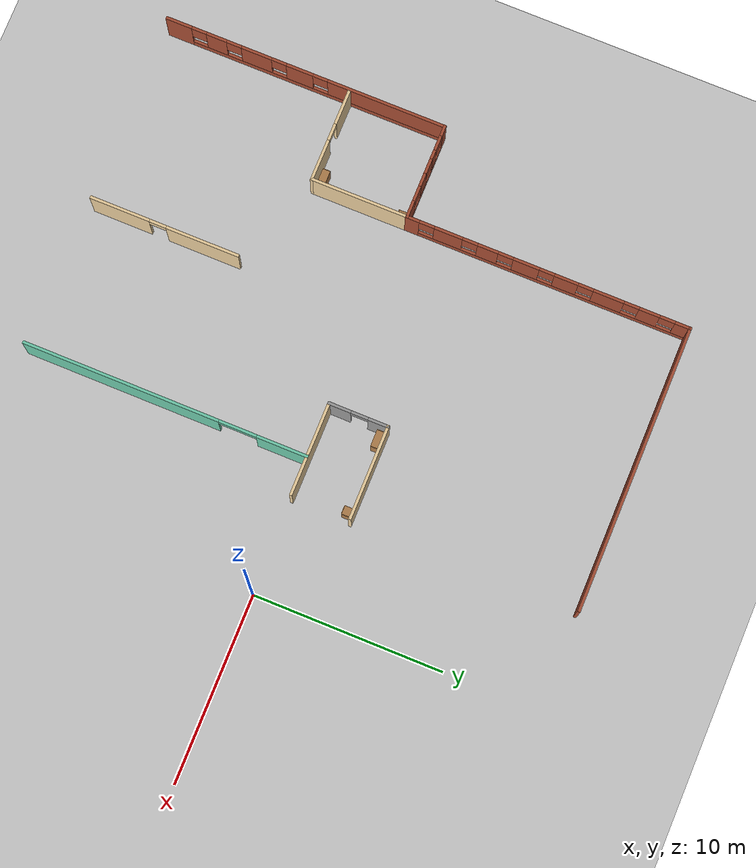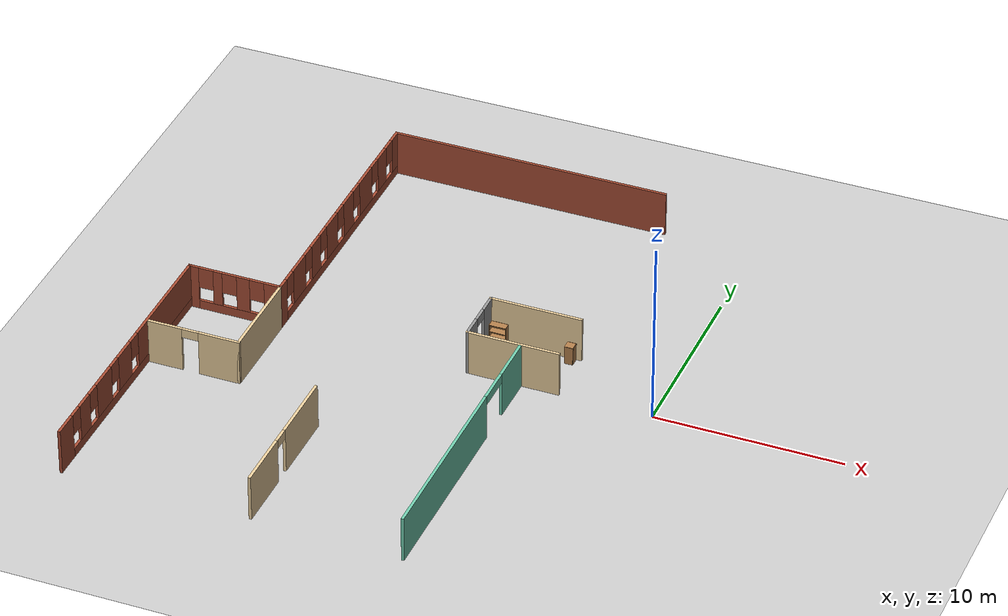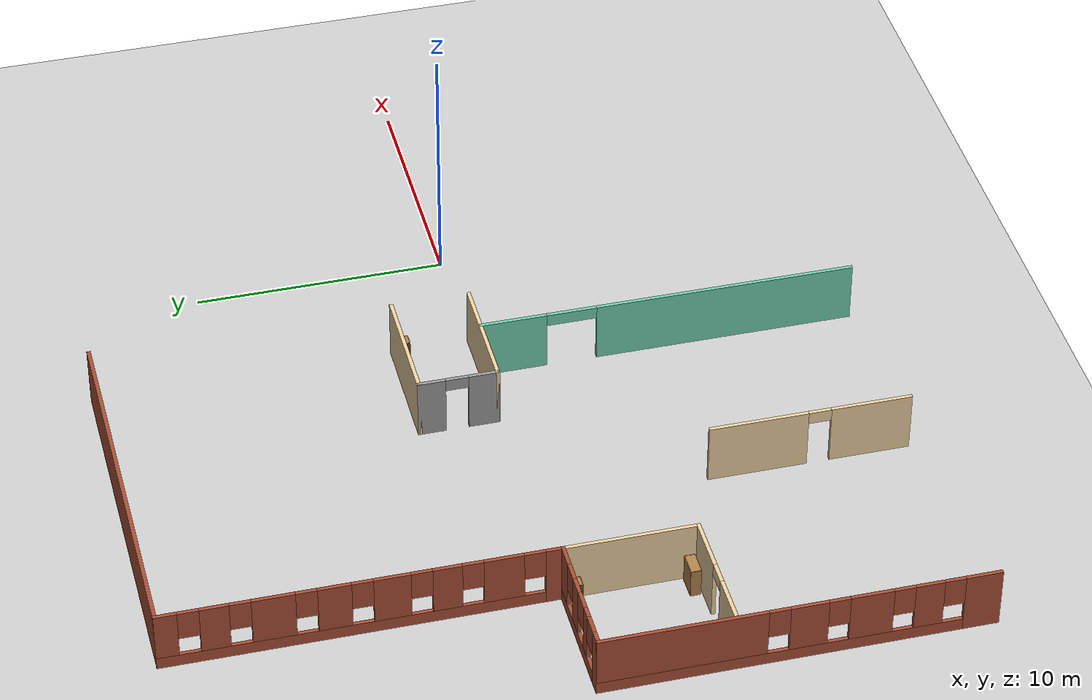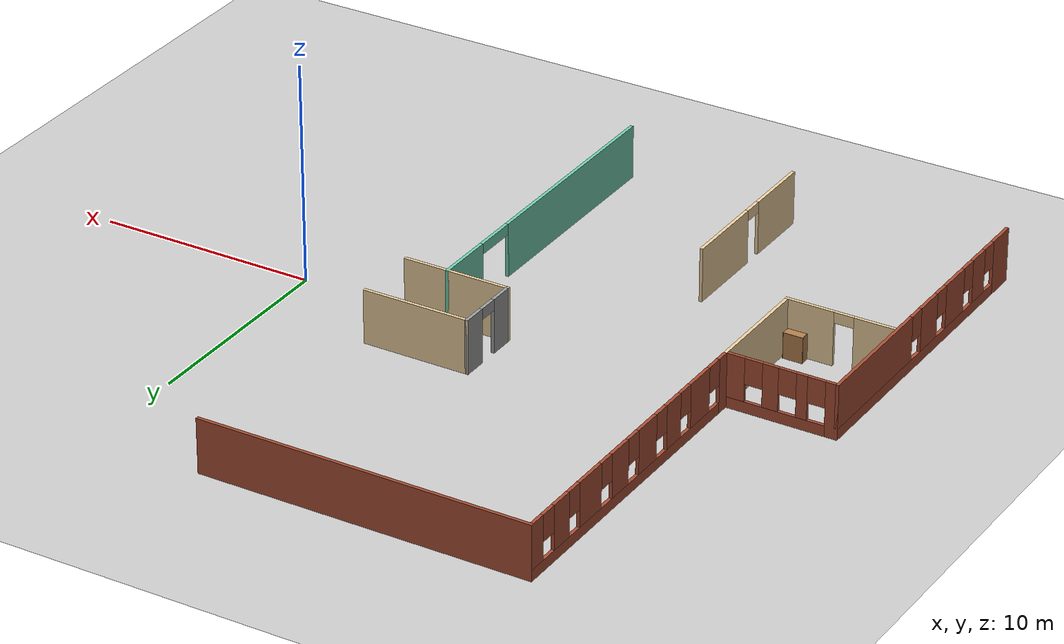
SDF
<sdf version="1.7">
 <world name="default">
  <model name="ground_plane">
   <static>1</static>
   <link name="link">
    <collision name="collision">
     <geometry><plane><normal>0 0 1</normal><size>100 100</size></plane></geometry>
     <surface><friction><ode><mu>100</mu><mu2>50</mu2></ode></friction></surface>
    </collision>
    <visual name="visual">
     <cast_shadows>0</cast_shadows>
     <geometry><plane><normal>0 0 1</normal><size>100 100</size></plane></geometry>
     <material>
      <script><uri>file://media/materials/scripts/gazebo.material</uri><name>Gazebo/Grey</name></script>
     </material>
    </visual>
   </link>
  </model>
  <model name="office">
   <link name="Wall_10">
    <collision name="Wall_10_Collision">
     <geometry><box><size>15.15 0.15 2.5</size></box></geometry>
     <pose>0 0 1.25 0 -0 0</pose>
    </collision>
    <visual name="Wall_10_Visual">
     <pose>0 0 1.25 0 -0 0</pose>
     <geometry><box><size>15.15 0.15 2.5</size></box></geometry>
     <material>
      <script><uri>file://media/materials/scripts/gazebo.material</uri><name>Gazebo/Bricks</name></script>
      <ambient>1 1 1 1</ambient>
     </material>
     <meta><layer>0</layer></meta>
    </visual>
    <pose>-12.5 15 0 0 -0 0</pose>
   </link>
   <link name="Wall_30">
    <collision name="Wall_30_Collision">
     <geometry><box><size>5.25 0.15 2.5</size></box></geometry>
     <pose>0 0 1.25 0 -0 0</pose>
    </collision>
    <visual name="Wall_30_Visual">
     <pose>0 0 1.25 0 -0 0</pose>
     <geometry><box><size>5.25 0.15 2.5</size></box></geometry>
     <material>
      <script><uri>file://media/materials/scripts/gazebo.material</uri><name>Gazebo/Grey</name></script>
      <ambient>0.921569 0.807843 0.615686 1</ambient>
     </material>
     <meta><layer>0</layer></meta>
    </visual>
    <pose>-20 -2.55 0 0 -0 -1.5708</pose>
   </link>
   <link name="Wall_31">
    <pose>-22.425 -5.1 0 0 -0 3.14159</pose>
    <visual name="Wall_31_Visual_0">
     <pose>-1.3798 0 1.25 0 -0 0</pose>
     <geometry><box><size>2.24039 0.15 2.5</size></box></geometry>
     <material>
      <script><uri>file://media/materials/scripts/gazebo.material</uri><name>Gazebo/Grey</name></script>
      <ambient>0.921569 0.807843 0.615686 1</ambient>
     </material>
     <meta><layer>0</layer></meta>
    </visual>
    <collision name="Wall_31_Collision_0">
     <geometry><box><size>2.24039 0.15 2.5</size></box></geometry>
     <pose>-1.3798 0 1.25 0 -0 0</pose>
    </collision>
    <visual name="Wall_31_Visual_1">
     <pose>1.5702 0 1.25 0 -0 0</pose>
     <geometry><box><size>1.85961 0.15 2.5</size></box></geometry>
     <material>
      <script><uri>file://media/materials/scripts/gazebo.material</uri><name>Gazebo/Grey</name></script>
      <ambient>0.921569 0.807843 0.615686 1</ambient>
     </material>
     <meta><layer>0</layer></meta>
    </visual>
    <collision name="Wall_31_Collision_1">
     <geometry><box><size>1.85961 0.15 2.5</size></box></geometry>
     <pose>1.5702 0 1.25 0 -0 0</pose>
    </collision>
    <visual name="Wall_31_Visual_2">
     <pose>0.190393 0 2.25 0 -0 0</pose>
     <geometry><box><size>0.9 0.15 0.5</size></box></geometry>
     <material>
      <script><uri>file://media/materials/scripts/gazebo.material</uri><name>Gazebo/Grey</name></script>
      <ambient>0.921569 0.807843 0.615686 1</ambient>
     </material>
     <meta><layer>0</layer></meta>
    </visual>
    <collision name="Wall_31_Collision_2">
     <geometry><box><size>0.9 0.15 0.5</size></box></geometry>
     <pose>0.190393 0 2.25 0 -0 0</pose>
    </collision>
   </link>
   <link name="Wall_33">
    <pose>-15 -10.925 0 0 -0 -1.5708</pose>
    <visual name="Wall_33_Visual_0">
     <pose>-2.0477 0 1.25 0 -0 0</pose>
     <geometry><box><size>3.90459 0.15 2.5</size></box></geometry>
     <material>
      <script><uri>file://media/materials/scripts/gazebo.material</uri><name>Gazebo/Grey</name></script>
      <ambient>0.921569 0.807843 0.615686 1</ambient>
     </material>
     <meta><layer>0</layer></meta>
    </visual>
    <collision name="Wall_33_Collision_0">
     <geometry><box><size>3.90459 0.15 2.5</size></box></geometry>
     <pose>-2.0477 0 1.25 0 -0 0</pose>
    </collision>
    <visual name="Wall_33_Visual_1">
     <pose>2.4023 0 1.25 0 -0 0</pose>
     <geometry><box><size>3.19541 0.15 2.5</size></box></geometry>
     <material>
      <script><uri>file://media/materials/scripts/gazebo.material</uri><name>Gazebo/Grey</name></script>
      <ambient>0.921569 0.807843 0.615686 1</ambient>
     </material>
     <meta><layer>0</layer></meta>
    </visual>
    <collision name="Wall_33_Collision_1">
     <geometry><box><size>3.19541 0.15 2.5</size></box></geometry>
     <pose>2.4023 0 1.25 0 -0 0</pose>
    </collision>
    <visual name="Wall_33_Visual_2">
     <pose>0.354591 0 2.25 0 -0 0</pose>
     <geometry><box><size>0.9 0.15 0.5</size></box></geometry>
     <material>
      <script><uri>file://media/materials/scripts/gazebo.material</uri><name>Gazebo/Grey</name></script>
      <ambient>0.921569 0.807843 0.615686 1</ambient>
     </material>
     <meta><layer>0</layer></meta>
    </visual>
    <collision name="Wall_33_Collision_2">
     <geometry><box><size>0.9 0.15 0.5</size></box></geometry>
     <pose>0.354591 0 2.25 0 -0 0</pose>
    </collision>
   </link>
   <link name="Wall_35">
    <collision name="Wall_35_Collision">
     <geometry><box><size>5 0.15 2.5</size></box></geometry>
     <pose>0 0 1.25 0 -0 0</pose>
    </collision>
    <visual name="Wall_35_Visual">
     <pose>0 0 1.25 0 -0 0</pose>
     <geometry><box><size>5 0.15 2.5</size></box></geometry>
     <material>
      <script><uri>file://media/materials/scripts/gazebo.material</uri><name>Gazebo/Grey</name></script>
      <ambient>0.921569 0.807843 0.615686 1</ambient>
     </material>
     <meta><layer>0</layer></meta>
    </visual>
    <pose>-7.425 0 0 0 -0 3.14159</pose>
   </link>
   <link name="Wall_36">
    <pose>-9.85 1.55 0 0 -0 1.5708</pose>
    <visual name="Wall_36_Visual_0">
     <pose>-1.00951 0 1.25 0 -0 0</pose>
     <geometry><box><size>1.23099 0.15 2.5</size></box></geometry>
     <material>
      <script><uri>file://media/materials/scripts/gazebo.material</uri><name>Gazebo/Grey</name></script>
      <ambient>1 1 1 1</ambient>
     </material>
     <meta><layer>0</layer></meta>
    </visual>
    <collision name="Wall_36_Collision_0">
     <geometry><box><size>1.23099 0.15 2.5</size></box></geometry>
     <pose>-1.00951 0 1.25 0 -0 0</pose>
    </collision>
    <visual name="Wall_36_Visual_1">
     <pose>1.06549 0 1.25 0 -0 0</pose>
     <geometry><box><size>1.11901 0.15 2.5</size></box></geometry>
     <material>
      <script><uri>file://media/materials/scripts/gazebo.material</uri><name>Gazebo/Grey</name></script>
      <ambient>1 1 1 1</ambient>
     </material>
     <meta><layer>0</layer></meta>
    </visual>
    <collision name="Wall_36_Collision_1">
     <geometry><box><size>1.11901 0.15 2.5</size></box></geometry>
     <pose>1.06549 0 1.25 0 -0 0</pose>
    </collision>
    <visual name="Wall_36_Visual_2">
     <pose>0.055988 0 2.25 0 -0 0</pose>
     <geometry><box><size>0.9 0.15 0.5</size></box></geometry>
     <material>
      <script><uri>file://media/materials/scripts/gazebo.material</uri><name>Gazebo/Grey</name></script>
      <ambient>1 1 1 1</ambient>
     </material>
     <meta><layer>0</layer></meta>
    </visual>
    <collision name="Wall_36_Collision_2">
     <geometry><box><size>0.9 0.15 0.5</size></box></geometry>
     <pose>0.055988 0 2.25 0 -0 0</pose>
    </collision>
   </link>
   <link name="Wall_37">
    <collision name="Wall_37_Collision">
     <geometry><box><size>5 0.15 2.5</size></box></geometry>
     <pose>0 0 1.25 0 -0 0</pose>
    </collision>
    <visual name="Wall_37_Visual">
     <pose>0 0 1.25 0 -0 0</pose>
     <geometry><box><size>5 0.15 2.5</size></box></geometry>
     <material>
      <script><uri>file://media/materials/scripts/gazebo.material</uri><name>Gazebo/Grey</name></script>
      <ambient>0.921569 0.807843 0.615686 1</ambient>
     </material>
     <meta><layer>0</layer></meta>
    </visual>
    <pose>-7.425 3.1 0 0 -0 0</pose>
   </link>
   <link name="Wall_39">
    <pose>-7 -7.5 0 0 -0 -1.5708</pose>
    <visual name="Wall_39_Visual_0">
     <pose>-6.21415 0 1.25 0 -0 0</pose>
     <geometry><box><size>2.72169 0.15 2.5</size></box></geometry>
     <material>
      <script><uri>file://media/materials/scripts/gazebo.material</uri><name>Gazebo/Grey</name></script>
      <ambient>0.435294 0.796078 0.67451 1</ambient>
     </material>
     <meta><layer>0</layer></meta>
    </visual>
    <collision name="Wall_39_Collision_0">
     <geometry><box><size>2.72169 0.15 2.5</size></box></geometry>
     <pose>-6.21415 0 1.25 0 -0 0</pose>
    </collision>
    <visual name="Wall_39_Visual_1">
     <pose>2.36085 0 1.25 0 -0 0</pose>
     <geometry><box><size>10.4283 0.15 2.5</size></box></geometry>
     <material>
      <script><uri>file://media/materials/scripts/gazebo.material</uri><name>Gazebo/Grey</name></script>
      <ambient>0.435294 0.796078 0.67451 1</ambient>
     </material>
     <meta><layer>0</layer></meta>
    </visual>
    <collision name="Wall_39_Collision_1">
     <geometry><box><size>10.4283 0.15 2.5</size></box></geometry>
     <pose>2.36085 0 1.25 0 -0 0</pose>
    </collision>
    <visual name="Wall_39_Visual_2">
     <pose>-3.85331 0 2.25 0 -0 0</pose>
     <geometry><box><size>2 0.15 0.5</size></box></geometry>
     <material>
      <script><uri>file://media/materials/scripts/gazebo.material</uri><name>Gazebo/Grey</name></script>
      <ambient>0.435294 0.796078 0.67451 1</ambient>
     </material>
     <meta><layer>0</layer></meta>
    </visual>
    <collision name="Wall_39_Collision_2">
     <geometry><box><size>2 0.15 0.5</size></box></geometry>
     <pose>-3.85331 0 2.25 0 -0 0</pose>
    </collision>
   </link>
   <link name="Wall_4">
    <pose>-25 -7.5 0 0 -0 1.5708</pose>
    <visual name="Wall_4_Visual_0">
     <pose>-6.87392 0 1.25 0 -0 0</pose>
     <geometry><box><size>1.40215 0.15 2.5</size></box></geometry>
     <material>
      <script><uri>file://media/materials/scripts/gazebo.material</uri><name>Gazebo/Bricks</name></script>
      <ambient>1 1 1 1</ambient>
     </material>
     <meta><layer>0</layer></meta>
    </visual>
    <collision name="Wall_4_Collision_0">
     <geometry><box><size>1.40215 0.15 2.5</size></box></geometry>
     <pose>-6.87392 0 1.25 0 -0 0</pose>
    </collision>
    <visual name="Wall_4_Visual_1">
     <pose>0.701077 0 0.25 0 -0 0</pose>
     <geometry><box><size>13.7478 0.15 0.5</size></box></geometry>
     <material>
      <script><uri>file://media/materials/scripts/gazebo.material</uri><name>Gazebo/Bricks</name></script>
      <ambient>1 1 1 1</ambient>
     </material>
     <meta><layer>0</layer></meta>
    </visual>
    <collision name="Wall_4_Collision_1">
     <geometry><box><size>13.7478 0.15 0.5</size></box></geometry>
     <pose>0.701077 0 0.25 0 -0 0</pose>
    </collision>
    <visual name="Wall_4_Visual_2">
     <pose>-4.82312 0 1.5 0 -0 0</pose>
     <geometry><box><size>1.09946 0.15 2</size></box></geometry>
     <material>
      <script><uri>file://media/materials/scripts/gazebo.material</uri><name>Gazebo/Bricks</name></script>
      <ambient>1 1 1 1</ambient>
     </material>
     <meta><layer>0</layer></meta>
    </visual>
    <collision name="Wall_4_Collision_2">
     <geometry><box><size>1.09946 0.15 2</size></box></geometry>
     <pose>-4.82312 0 1.5 0 -0 0</pose>
    </collision>
    <visual name="Wall_4_Visual_3">
     <pose>-2.65231 0 1.5 0 -0 0</pose>
     <geometry><box><size>1.64216 0.15 2</size></box></geometry>
     <material>
      <script><uri>file://media/materials/scripts/gazebo.material</uri><name>Gazebo/Bricks</name></script>
      <ambient>1 1 1 1</ambient>
     </material>
     <meta><layer>0</layer></meta>
    </visual>
    <collision name="Wall_4_Collision_3">
     <geometry><box><size>1.64216 0.15 2</size></box></geometry>
     <pose>-2.65231 0 1.5 0 -0 0</pose>
    </collision>
    <visual name="Wall_4_Visual_4">
     <pose>-0.311907 0 1.5 0 -0 0</pose>
     <geometry><box><size>1.43865 0.15 2</size></box></geometry>
     <material>
      <script><uri>file://media/materials/scripts/gazebo.material</uri><name>Gazebo/Bricks</name></script>
      <ambient>1 1 1 1</ambient>
     </material>
     <meta><layer>0</layer></meta>
    </visual>
    <collision name="Wall_4_Collision_4">
     <geometry><box><size>1.43865 0.15 2</size></box></geometry>
     <pose>-0.311907 0 1.5 0 -0 0</pose>
    </collision>
    <visual name="Wall_4_Visual_5">
     <pose>4.39121 0 1.5 0 -0 0</pose>
     <geometry><box><size>6.36758 0.15 2</size></box></geometry>
     <material>
      <script><uri>file://media/materials/scripts/gazebo.material</uri><name>Gazebo/Bricks</name></script>
      <ambient>1 1 1 1</ambient>
     </material>
     <meta><layer>0</layer></meta>
    </visual>
    <collision name="Wall_4_Collision_5">
     <geometry><box><size>6.36758 0.15 2</size></box></geometry>
     <pose>4.39121 0 1.5 0 -0 0</pose>
    </collision>
    <visual name="Wall_4_Visual_6">
     <pose>-5.77285 0 1.9 0 -0 0</pose>
     <geometry><box><size>0.8 0.15 1.2</size></box></geometry>
     <material>
      <script><uri>file://media/materials/scripts/gazebo.material</uri><name>Gazebo/Bricks</name></script>
      <ambient>1 1 1 1</ambient>
     </material>
     <meta><layer>0</layer></meta>
    </visual>
    <collision name="Wall_4_Collision_6">
     <geometry><box><size>0.8 0.15 1.2</size></box></geometry>
     <pose>-5.77285 0 1.9 0 -0 0</pose>
    </collision>
    <visual name="Wall_4_Visual_7">
     <pose>-3.87339 0 1.9 0 -0 0</pose>
     <geometry><box><size>0.8 0.15 1.2</size></box></geometry>
     <material>
      <script><uri>file://media/materials/scripts/gazebo.material</uri><name>Gazebo/Bricks</name></script>
      <ambient>1 1 1 1</ambient>
     </material>
     <meta><layer>0</layer></meta>
    </visual>
    <collision name="Wall_4_Collision_7">
     <geometry><box><size>0.8 0.15 1.2</size></box></geometry>
     <pose>-3.87339 0 1.9 0 -0 0</pose>
    </collision>
    <visual name="Wall_4_Visual_8">
     <pose>-1.43123 0 1.9 0 -0 0</pose>
     <geometry><box><size>0.8 0.15 1.2</size></box></geometry>
     <material>
      <script><uri>file://media/materials/scripts/gazebo.material</uri><name>Gazebo/Bricks</name></script>
      <ambient>1 1 1 1</ambient>
     </material>
     <meta><layer>0</layer></meta>
    </visual>
    <collision name="Wall_4_Collision_8">
     <geometry><box><size>0.8 0.15 1.2</size></box></geometry>
     <pose>-1.43123 0 1.9 0 -0 0</pose>
    </collision>
    <visual name="Wall_4_Visual_9">
     <pose>0.807416 0 1.9 0 -0 0</pose>
     <geometry><box><size>0.8 0.15 1.2</size></box></geometry>
     <material>
      <script><uri>file://media/materials/scripts/gazebo.material</uri><name>Gazebo/Bricks</name></script>
      <ambient>1 1 1 1</ambient>
     </material>
     <meta><layer>0</layer></meta>
    </visual>
    <collision name="Wall_4_Collision_9">
     <geometry><box><size>0.8 0.15 1.2</size></box></geometry>
     <pose>0.807416 0 1.9 0 -0 0</pose>
    </collision>
   </link>
   <link name="Wall_6">
    <pose>-22.5 0 0 0 -0 0</pose>
    <visual name="Wall_6_Visual_0">
     <pose>-2.28117 0 1.25 0 -0 0</pose>
     <geometry><box><size>0.587663 0.15 2.5</size></box></geometry>
     <material>
      <script><uri>file://media/materials/scripts/gazebo.material</uri><name>Gazebo/Bricks</name></script>
      <ambient>1 1 1 1</ambient>
     </material>
     <meta><layer>0</layer></meta>
    </visual>
    <collision name="Wall_6_Collision_0">
     <geometry><box><size>0.587663 0.15 2.5</size></box></geometry>
     <pose>-2.28117 0 1.25 0 -0 0</pose>
    </collision>
    <visual name="Wall_6_Visual_1">
     <pose>0.293831 0 0.25 0 -0 0</pose>
     <geometry><box><size>4.56234 0.15 0.5</size></box></geometry>
     <material>
      <script><uri>file://media/materials/scripts/gazebo.material</uri><name>Gazebo/Bricks</name></script>
      <ambient>1 1 1 1</ambient>
     </material>
     <meta><layer>0</layer></meta>
    </visual>
    <collision name="Wall_6_Collision_1">
     <geometry><box><size>4.56234 0.15 0.5</size></box></geometry>
     <pose>0.293831 0 0.25 0 -0 0</pose>
    </collision>
    <visual name="Wall_6_Visual_2">
     <pose>-0.940574 0 1.5 0 -0 0</pose>
     <geometry><box><size>0.493528 0.15 2</size></box></geometry>
     <material>
      <script><uri>file://media/materials/scripts/gazebo.material</uri><name>Gazebo/Bricks</name></script>
      <ambient>1 1 1 1</ambient>
     </material>
     <meta><layer>0</layer></meta>
    </visual>
    <collision name="Wall_6_Collision_2">
     <geometry><box><size>0.493528 0.15 2</size></box></geometry>
     <pose>-0.940574 0 1.5 0 -0 0</pose>
    </collision>
    <visual name="Wall_6_Visual_3">
     <pose>0.464465 0 1.5 0 -0 0</pose>
     <geometry><box><size>0.71655 0.15 2</size></box></geometry>
     <material>
      <script><uri>file://media/materials/scripts/gazebo.material</uri><name>Gazebo/Bricks</name></script>
      <ambient>1 1 1 1</ambient>
     </material>
     <meta><layer>0</layer></meta>
    </visual>
    <collision name="Wall_6_Collision_3">
     <geometry><box><size>0.71655 0.15 2</size></box></geometry>
     <pose>0.464465 0 1.5 0 -0 0</pose>
    </collision>
    <visual name="Wall_6_Visual_4">
     <pose>2.09887 0 1.5 0 -0 0</pose>
     <geometry><box><size>0.95226 0.15 2</size></box></geometry>
     <material>
      <script><uri>file://media/materials/scripts/gazebo.material</uri><name>Gazebo/Bricks</name></script>
      <ambient>1 1 1 1</ambient>
     </material>
     <meta><layer>0</layer></meta>
    </visual>
    <collision name="Wall_6_Collision_4">
     <geometry><box><size>0.95226 0.15 2</size></box></geometry>
     <pose>2.09887 0 1.5 0 -0 0</pose>
    </collision>
    <visual name="Wall_6_Visual_5">
     <pose>-1.58734 0 1.9 0 -0 0</pose>
     <geometry><box><size>0.8 0.15 1.2</size></box></geometry>
     <material>
      <script><uri>file://media/materials/scripts/gazebo.material</uri><name>Gazebo/Bricks</name></script>
      <ambient>1 1 1 1</ambient>
     </material>
     <meta><layer>0</layer></meta>
    </visual>
    <collision name="Wall_6_Collision_5">
     <geometry><box><size>0.8 0.15 1.2</size></box></geometry>
     <pose>-1.58734 0 1.9 0 -0 0</pose>
    </collision>
    <visual name="Wall_6_Visual_6">
     <pose>-0.29381 0 1.9 0 -0 0</pose>
     <geometry><box><size>0.8 0.15 1.2</size></box></geometry>
     <material>
      <script><uri>file://media/materials/scripts/gazebo.material</uri><name>Gazebo/Bricks</name></script>
      <ambient>1 1 1 1</ambient>
     </material>
     <meta><layer>0</layer></meta>
    </visual>
    <collision name="Wall_6_Collision_6">
     <geometry><box><size>0.8 0.15 1.2</size></box></geometry>
     <pose>-0.29381 0 1.9 0 -0 0</pose>
    </collision>
    <visual name="Wall_6_Visual_7">
     <pose>1.22274 0 1.9 0 -0 0</pose>
     <geometry><box><size>0.8 0.15 1.2</size></box></geometry>
     <material>
      <script><uri>file://media/materials/scripts/gazebo.material</uri><name>Gazebo/Bricks</name></script>
      <ambient>1 1 1 1</ambient>
     </material>
     <meta><layer>0</layer></meta>
    </visual>
    <collision name="Wall_6_Collision_7">
     <geometry><box><size>0.8 0.15 1.2</size></box></geometry>
     <pose>1.22274 0 1.9 0 -0 0</pose>
    </collision>
   </link>
   <link name="Wall_8">
    <pose>-20 7.5 0 0 -0 1.5708</pose>
    <visual name="Wall_8_Visual_0">
     <pose>-7.20776 0 1.25 0 -0 0</pose>
     <geometry><box><size>0.734484 0.15 2.5</size></box></geometry>
     <material>
      <script><uri>file://media/materials/scripts/gazebo.material</uri><name>Gazebo/Bricks</name></script>
      <ambient>1 1 1 1</ambient>
     </material>
     <meta><layer>0</layer></meta>
    </visual>
    <collision name="Wall_8_Collision_0">
     <geometry><box><size>0.734484 0.15 2.5</size></box></geometry>
     <pose>-7.20776 0 1.25 0 -0 0</pose>
    </collision>
    <visual name="Wall_8_Visual_1">
     <pose>0.367242 0 0.25 0 -0 0</pose>
     <geometry><box><size>14.4155 0.15 0.5</size></box></geometry>
     <material>
      <script><uri>file://media/materials/scripts/gazebo.material</uri><name>Gazebo/Bricks</name></script>
      <ambient>1 1 1 1</ambient>
     </material>
     <meta><layer>0</layer></meta>
    </visual>
    <collision name="Wall_8_Collision_1">
     <geometry><box><size>14.4155 0.15 0.5</size></box></geometry>
     <pose>0.367242 0 0.25 0 -0 0</pose>
    </collision>
    <visual name="Wall_8_Visual_2">
     <pose>-5.28727 0 1.5 0 -0 0</pose>
     <geometry><box><size>1.50648 0.15 2</size></box></geometry>
     <material>
      <script><uri>file://media/materials/scripts/gazebo.material</uri><name>Gazebo/Bricks</name></script>
      <ambient>1 1 1 1</ambient>
     </material>
     <meta><layer>0</layer></meta>
    </visual>
    <collision name="Wall_8_Collision_2">
     <geometry><box><size>1.50648 0.15 2</size></box></geometry>
     <pose>-5.28727 0 1.5 0 -0 0</pose>
    </collision>
    <visual name="Wall_8_Visual_3">
     <pose>-3.1843 0 1.5 0 -0 0</pose>
     <geometry><box><size>1.09946 0.15 2</size></box></geometry>
     <material>
      <script><uri>file://media/materials/scripts/gazebo.material</uri><name>Gazebo/Bricks</name></script>
      <ambient>1 1 1 1</ambient>
     </material>
     <meta><layer>0</layer></meta>
    </visual>
    <collision name="Wall_8_Collision_3">
     <geometry><box><size>1.09946 0.15 2</size></box></geometry>
     <pose>-3.1843 0 1.5 0 -0 0</pose>
    </collision>
    <visual name="Wall_8_Visual_4">
     <pose>-1.14301 0 1.5 0 -0 0</pose>
     <geometry><box><size>1.38314 0.15 2</size></box></geometry>
     <material>
      <script><uri>file://media/materials/scripts/gazebo.material</uri><name>Gazebo/Bricks</name></script>
      <ambient>1 1 1 1</ambient>
     </material>
     <meta><layer>0</layer></meta>
    </visual>
    <collision name="Wall_8_Collision_4">
     <geometry><box><size>1.38314 0.15 2</size></box></geometry>
     <pose>-1.14301 0 1.5 0 -0 0</pose>
    </collision>
    <visual name="Wall_8_Visual_5">
     <pose>0.97622 0 1.5 0 -0 0</pose>
     <geometry><box><size>1.25531 0.15 2</size></box></geometry>
     <material>
      <script><uri>file://media/materials/scripts/gazebo.material</uri><name>Gazebo/Bricks</name></script>
      <ambient>1 1 1 1</ambient>
     </material>
     <meta><layer>0</layer></meta>
    </visual>
    <collision name="Wall_8_Collision_5">
     <geometry><box><size>1.25531 0.15 2</size></box></geometry>
     <pose>0.97622 0 1.5 0 -0 0</pose>
    </collision>
    <visual name="Wall_8_Visual_6">
     <pose>3.21316 0 1.5 0 -0 0</pose>
     <geometry><box><size>1.61856 0.15 2</size></box></geometry>
     <material>
      <script><uri>file://media/materials/scripts/gazebo.material</uri><name>Gazebo/Bricks</name></script>
      <ambient>1 1 1 1</ambient>
     </material>
     <meta><layer>0</layer></meta>
    </visual>
    <collision name="Wall_8_Collision_6">
     <geometry><box><size>1.61856 0.15 2</size></box></geometry>
     <pose>3.21316 0 1.5 0 -0 0</pose>
    </collision>
    <visual name="Wall_8_Visual_7">
     <pose>5.36627 0 1.5 0 -0 0</pose>
     <geometry><box><size>1.08766 0.15 2</size></box></geometry>
     <material>
      <script><uri>file://media/materials/scripts/gazebo.material</uri><name>Gazebo/Bricks</name></script>
      <ambient>1 1 1 1</ambient>
     </material>
     <meta><layer>0</layer></meta>
    </visual>
    <collision name="Wall_8_Collision_7">
     <geometry><box><size>1.08766 0.15 2</size></box></geometry>
     <pose>5.36627 0 1.5 0 -0 0</pose>
    </collision>
    <visual name="Wall_8_Visual_8">
     <pose>7.14255 0 1.5 0 -0 0</pose>
     <geometry><box><size>0.8649 0.15 2</size></box></geometry>
     <material>
      <script><uri>file://media/materials/scripts/gazebo.material</uri><name>Gazebo/Bricks</name></script>
      <ambient>1 1 1 1</ambient>
     </material>
     <meta><layer>0</layer></meta>
    </visual>
    <collision name="Wall_8_Collision_8">
     <geometry><box><size>0.8649 0.15 2</size></box></geometry>
     <pose>7.14255 0 1.5 0 -0 0</pose>
    </collision>
    <visual name="Wall_8_Visual_9">
     <pose>-6.44052 0 1.9 0 -0 0</pose>
     <geometry><box><size>0.8 0.15 1.2</size></box></geometry>
     <material>
      <script><uri>file://media/materials/scripts/gazebo.material</uri><name>Gazebo/Bricks</name></script>
      <ambient>1 1 1 1</ambient>
     </material>
     <meta><layer>0</layer></meta>
    </visual>
    <collision name="Wall_8_Collision_9">
     <geometry><box><size>0.8 0.15 1.2</size></box></geometry>
     <pose>-6.44052 0 1.9 0 -0 0</pose>
    </collision>
    <visual name="Wall_8_Visual_10">
     <pose>-4.13403 0 1.9 0 -0 0</pose>
     <geometry><box><size>0.8 0.15 1.2</size></box></geometry>
     <material>
      <script><uri>file://media/materials/scripts/gazebo.material</uri><name>Gazebo/Bricks</name></script>
      <ambient>1 1 1 1</ambient>
     </material>
     <meta><layer>0</layer></meta>
    </visual>
    <collision name="Wall_8_Collision_10">
     <geometry><box><size>0.8 0.15 1.2</size></box></geometry>
     <pose>-4.13403 0 1.9 0 -0 0</pose>
    </collision>
    <visual name="Wall_8_Visual_11">
     <pose>-2.23457 0 1.9 0 -0 0</pose>
     <geometry><box><size>0.8 0.15 1.2</size></box></geometry>
     <material>
      <script><uri>file://media/materials/scripts/gazebo.material</uri><name>Gazebo/Bricks</name></script>
      <ambient>1 1 1 1</ambient>
     </material>
     <meta><layer>0</layer></meta>
    </visual>
    <collision name="Wall_8_Collision_11">
     <geometry><box><size>0.8 0.15 1.2</size></box></geometry>
     <pose>-2.23457 0 1.9 0 -0 0</pose>
    </collision>
    <visual name="Wall_8_Visual_12">
     <pose>-0.051436 0 1.9 0 -0 0</pose>
     <geometry><box><size>0.8 0.15 1.2</size></box></geometry>
     <material>
      <script><uri>file://media/materials/scripts/gazebo.material</uri><name>Gazebo/Bricks</name></script>
      <ambient>1 1 1 1</ambient>
     </material>
     <meta><layer>0</layer></meta>
    </visual>
    <collision name="Wall_8_Collision_12">
     <geometry><box><size>0.8 0.15 1.2</size></box></geometry>
     <pose>-0.051436 0 1.9 0 -0 0</pose>
    </collision>
    <visual name="Wall_8_Visual_13">
     <pose>2.00388 0 1.9 0 -0 0</pose>
     <geometry><box><size>0.8 0.15 1.2</size></box></geometry>
     <material>
      <script><uri>file://media/materials/scripts/gazebo.material</uri><name>Gazebo/Bricks</name></script>
      <ambient>1 1 1 1</ambient>
     </material>
     <meta><layer>0</layer></meta>
    </visual>
    <collision name="Wall_8_Collision_13">
     <geometry><box><size>0.8 0.15 1.2</size></box></geometry>
     <pose>2.00388 0 1.9 0 -0 0</pose>
    </collision>
    <visual name="Wall_8_Visual_14">
     <pose>4.42244 0 1.9 0 -0 0</pose>
     <geometry><box><size>0.8 0.15 1.2</size></box></geometry>
     <material>
      <script><uri>file://media/materials/scripts/gazebo.material</uri><name>Gazebo/Bricks</name></script>
      <ambient>1 1 1 1</ambient>
     </material>
     <meta><layer>0</layer></meta>
    </visual>
    <collision name="Wall_8_Collision_14">
     <geometry><box><size>0.8 0.15 1.2</size></box></geometry>
     <pose>4.42244 0 1.9 0 -0 0</pose>
    </collision>
    <visual name="Wall_8_Visual_15">
     <pose>6.3101 0 1.9 0 -0 0</pose>
     <geometry><box><size>0.8 0.15 1.2</size></box></geometry>
     <material>
      <script><uri>file://media/materials/scripts/gazebo.material</uri><name>Gazebo/Bricks</name></script>
      <ambient>1 1 1 1</ambient>
     </material>
     <meta><layer>0</layer></meta>
    </visual>
    <collision name="Wall_8_Collision_15">
     <geometry><box><size>0.8 0.15 1.2</size></box></geometry>
     <pose>6.3101 0 1.9 0 -0 0</pose>
    </collision>
   </link>
   <static>1</static>
  </model>
  <model name="cabinet">
   <static>1</static>
   <link name="cabinet_bottom_plate">
    <inertial>
     <pose>0 0 -1 0 -0 0</pose>
     <inertia><ixx>2.05</ixx><ixy>0</ixy><ixz>0</ixz><iyy>2.05</iyy><iyz>0</iyz><izz>2.05</izz></inertia>
     <mass>25</mass>
    </inertial>
    <collision name="cabinet_bottom_plate_geom">
     <pose>0 0 0.01 0 -0 0</pose>
     <geometry><box><size>0.45 0.45 0.02</size></box></geometry>
    </collision>
    <visual name="cabinet_bottom_plate_geom_visual">
     <pose>0 0 0.01 0 -0 0</pose>
     <geometry><box><size>0.45 0.45 0.02</size></box></geometry>
     <material>
      <script><uri>file://media/materials/scripts/gazebo.material</uri><name>Gazebo/Wood</name></script>
     </material>
    </visual>
    <collision name="cabinet_bottom_plate_geom_cabinet_back_plate">
     <pose>0.235 0 0.51 0 -0 0</pose>
     <geometry><box><size>0.02 0.45 1.02</size></box></geometry>
    </collision>
    <visual name="cabinet_bottom_plate_geom_cabinet_back_plate_visual">
     <pose>0.235 0 0.51 0 -0 0</pose>
     <geometry><box><size>0.02 0.45 1.02</size></box></geometry>
     <material>
      <script><uri>file://media/materials/scripts/gazebo.material</uri><name>Gazebo/Wood</name></script>
     </material>
    </visual>
    <collision name="cabinet_bottom_plate_geom_cabinet_left_plate">
     <pose>0 0.235 0.51 0 -0 0</pose>
     <geometry><box><size>0.45 0.02 1.02</size></box></geometry>
    </collision>
    <visual name="cabinet_bottom_plate_geom_cabinet_left_plate_visual">
     <pose>0 0.235 0.51 0 -0 0</pose>
     <geometry><box><size>0.45 0.02 1.02</size></box></geometry>
     <material>
      <script><uri>file://media/materials/scripts/gazebo.material</uri><name>Gazebo/Wood</name></script>
     </material>
    </visual>
    <collision name="cabinet_bottom_plate_geom_cabinet_middle_plate">
     <pose>0 0 0.51 0 -0 0</pose>
     <geometry><box><size>0.45 0.45 0.02</size></box></geometry>
    </collision>
    <visual name="cabinet_bottom_plate_geom_cabinet_middle_plate_visual">
     <pose>0 0 0.51 0 -0 0</pose>
     <geometry><box><size>0.45 0.45 0.02</size></box></geometry>
     <material>
      <script><uri>file://media/materials/scripts/gazebo.material</uri><name>Gazebo/Wood</name></script>
     </material>
    </visual>
    <collision name="cabinet_bottom_plate_geom_cabinet_right_plate">
     <pose>0 -0.235 0.51 0 -0 0</pose>
     <geometry><box><size>0.45 0.02 1.02</size></box></geometry>
    </collision>
    <visual name="cabinet_bottom_plate_geom_cabinet_right_plate_visual">
     <pose>0 -0.235 0.51 0 -0 0</pose>
     <geometry><box><size>0.45 0.02 1.02</size></box></geometry>
     <material>
      <script><uri>file://media/materials/scripts/gazebo.material</uri><name>Gazebo/Wood</name></script>
     </material>
    </visual>
    <collision name="cabinet_bottom_plate_geom_cabinet_top_plate">
     <pose>0 0 1.01 0 -0 0</pose>
     <geometry><box><size>0.45 0.45 0.02</size></box></geometry>
    </collision>
    <visual name="cabinet_bottom_plate_geom_cabinet_top_plate_visual">
     <pose>0 0 1.01 0 -0 0</pose>
     <geometry><box><size>0.45 0.45 0.02</size></box></geometry>
     <material>
      <script><uri>file://media/materials/scripts/gazebo.material</uri><name>Gazebo/Wood</name></script>
     </material>
    </visual>
   </link>
   <pose>-5.44256 2.76895 0 0 -0 0</pose>
  </model>
  <model name="cabinet_clone">
   <static>1</static>
   <link name="cabinet_bottom_plate">
    <inertial>
     <pose>0 0 -1 0 -0 0</pose>
     <inertia><ixx>2.05</ixx><ixy>0</ixy><ixz>0</ixz><iyy>2.05</iyy><iyz>0</iyz><izz>2.05</izz></inertia>
     <mass>25</mass>
    </inertial>
    <collision name="cabinet_bottom_plate_geom">
     <pose>0 0 0.01 0 -0 0</pose>
     <geometry><box><size>0.45 0.45 0.02</size></box></geometry>
    </collision>
    <visual name="cabinet_bottom_plate_geom_visual">
     <pose>0 0 0.01 0 -0 0</pose>
     <geometry><box><size>0.45 0.45 0.02</size></box></geometry>
     <material>
      <script><uri>file://media/materials/scripts/gazebo.material</uri><name>Gazebo/Wood</name></script>
     </material>
    </visual>
    <collision name="cabinet_bottom_plate_geom_cabinet_back_plate">
     <pose>0.235 0 0.51 0 -0 0</pose>
     <geometry><box><size>0.02 0.45 1.02</size></box></geometry>
    </collision>
    <visual name="cabinet_bottom_plate_geom_cabinet_back_plate_visual">
     <pose>0.235 0 0.51 0 -0 0</pose>
     <geometry><box><size>0.02 0.45 1.02</size></box></geometry>
     <material>
      <script><uri>file://media/materials/scripts/gazebo.material</uri><name>Gazebo/Wood</name></script>
     </material>
    </visual>
    <collision name="cabinet_bottom_plate_geom_cabinet_left_plate">
     <pose>0 0.235 0.51 0 -0 0</pose>
     <geometry><box><size>0.45 0.02 1.02</size></box></geometry>
    </collision>
    <visual name="cabinet_bottom_plate_geom_cabinet_left_plate_visual">
     <pose>0 0.235 0.51 0 -0 0</pose>
     <geometry><box><size>0.45 0.02 1.02</size></box></geometry>
     <material>
      <script><uri>file://media/materials/scripts/gazebo.material</uri><name>Gazebo/Wood</name></script>
     </material>
    </visual>
    <collision name="cabinet_bottom_plate_geom_cabinet_middle_plate">
     <pose>0 0 0.51 0 -0 0</pose>
     <geometry><box><size>0.45 0.45 0.02</size></box></geometry>
    </collision>
    <visual name="cabinet_bottom_plate_geom_cabinet_middle_plate_visual">
     <pose>0 0 0.51 0 -0 0</pose>
     <geometry><box><size>0.45 0.45 0.02</size></box></geometry>
     <material>
      <script><uri>file://media/materials/scripts/gazebo.material</uri><name>Gazebo/Wood</name></script>
     </material>
    </visual>
    <collision name="cabinet_bottom_plate_geom_cabinet_right_plate">
     <pose>0 -0.235 0.51 0 -0 0</pose>
     <geometry><box><size>0.45 0.02 1.02</size></box></geometry>
    </collision>
    <visual name="cabinet_bottom_plate_geom_cabinet_right_plate_visual">
     <pose>0 -0.235 0.51 0 -0 0</pose>
     <geometry><box><size>0.45 0.02 1.02</size></box></geometry>
     <material>
      <script><uri>file://media/materials/scripts/gazebo.material</uri><name>Gazebo/Wood</name></script>
     </material>
    </visual>
    <collision name="cabinet_bottom_plate_geom_cabinet_top_plate">
     <pose>0 0 1.01 0 -0 0</pose>
     <geometry><box><size>0.45 0.45 0.02</size></box></geometry>
    </collision>
    <visual name="cabinet_bottom_plate_geom_cabinet_top_plate_visual">
     <pose>0 0 1.01 0 -0 0</pose>
     <geometry><box><size>0.45 0.45 0.02</size></box></geometry>
     <material>
      <script><uri>file://media/materials/scripts/gazebo.material</uri><name>Gazebo/Wood</name></script>
     </material>
    </visual>
   </link>
   <pose>-20.3346 -0.374737 0 0 -0 0</pose>
  </model>
  <model name="bookshelf">
   <static>1</static>
   <link name="link">
    <inertial><mass>1</mass></inertial>
    <collision name="back">
     <pose>0 0.005 0.6 0 -0 0</pose>
     <geometry><box><size>0.9 0.01 1.2</size></box></geometry>
    </collision>
    <visual name="visual1">
     <pose>0 0.005 0.6 0 -0 0</pose>
     <geometry><box><size>0.9 0.01 1.2</size></box></geometry>
     <material>
      <script><uri>file://media/materials/scripts/gazebo.material</uri><name>Gazebo/Wood</name></script>
     </material>
    </visual>
    <collision name="left_side">
     <pose>0.45 -0.195 0.6 0 -0 0</pose>
     <geometry><box><size>0.02 0.4 1.2</size></box></geometry>
    </collision>
    <visual name="visual2">
     <pose>0.45 -0.195 0.6 0 -0 0</pose>
     <geometry><box><size>0.02 0.4 1.2</size></box></geometry>
     <material>
      <script><uri>file://media/materials/scripts/gazebo.material</uri><name>Gazebo/Wood</name></script>
     </material>
    </visual>
    <collision name="right_side">
     <pose>-0.45 -0.195 0.6 0 -0 0</pose>
     <geometry><box><size>0.02 0.4 1.2</size></box></geometry>
    </collision>
    <visual name="visual3">
     <pose>-0.45 -0.195 0.6 0 -0 0</pose>
     <geometry><box><size>0.02 0.4 1.2</size></box></geometry>
     <material>
      <script><uri>file://media/materials/scripts/gazebo.material</uri><name>Gazebo/Wood</name></script>
     </material>
    </visual>
    <collision name="bottom">
     <pose>0 -0.195 0.03 0 -0 0</pose>
     <geometry><box><size>0.88 0.4 0.06</size></box></geometry>
    </collision>
    <visual name="visual4">
     <pose>0 -0.195 0.03 0 -0 0</pose>
     <geometry><box><size>0.88 0.4 0.06</size></box></geometry>
     <material>
      <script><uri>file://media/materials/scripts/gazebo.material</uri><name>Gazebo/Wood</name></script>
     </material>
    </visual>
    <collision name="top">
     <pose>0 -0.195 1.19 0 -0 0</pose>
     <geometry><box><size>0.88 0.4 0.02</size></box></geometry>
    </collision>
    <visual name="visual5">
     <pose>0 -0.195 1.19 0 -0 0</pose>
     <geometry><box><size>0.88 0.4 0.02</size></box></geometry>
     <material>
      <script><uri>file://media/materials/scripts/gazebo.material</uri><name>Gazebo/Wood</name></script>
     </material>
    </visual>
    <collision name="low_shelf">
     <pose>0 -0.195 0.43 0 -0 0</pose>
     <geometry><box><size>0.88 0.4 0.02</size></box></geometry>
    </collision>
    <visual name="visual6">
     <pose>0 -0.195 0.43 0 -0 0</pose>
     <geometry><box><size>0.88 0.4 0.02</size></box></geometry>
     <material>
      <script><uri>file://media/materials/scripts/gazebo.material</uri><name>Gazebo/Wood</name></script>
     </material>
    </visual>
    <collision name="high_shelf">
     <pose>0 -0.195 0.8 0 -0 0</pose>
     <geometry><box><size>0.88 0.4 0.02</size></box></geometry>
    </collision>
    <visual name="visual7">
     <pose>0 -0.195 0.8 0 -0 0</pose>
     <geometry><box><size>0.88 0.4 0.02</size></box></geometry>
     <material>
      <script><uri>file://media/materials/scripts/gazebo.material</uri><name>Gazebo/Wood</name></script>
     </material>
    </visual>
   </link>
   <pose>-20.5962 -4.55443 0 0 -0 0</pose>
  </model>
  <model name="bookshelf_clone">
   <static>1</static>
   <link name="link">
    <inertial><mass>1</mass></inertial>
    <collision name="back">
     <pose>0 0.005 0.6 0 -0 0</pose>
     <geometry><box><size>0.9 0.01 1.2</size></box></geometry>
    </collision>
    <visual name="visual1">
     <pose>0 0.005 0.6 0 -0 0</pose>
     <geometry><box><size>0.9 0.01 1.2</size></box></geometry>
     <material>
      <script><uri>file://media/materials/scripts/gazebo.material</uri><name>Gazebo/Wood</name></script>
     </material>
    </visual>
    <collision name="left_side">
     <pose>0.45 -0.195 0.6 0 -0 0</pose>
     <geometry><box><size>0.02 0.4 1.2</size></box></geometry>
    </collision>
    <visual name="visual2">
     <pose>0.45 -0.195 0.6 0 -0 0</pose>
     <geometry><box><size>0.02 0.4 1.2</size></box></geometry>
     <material>
      <script><uri>file://media/materials/scripts/gazebo.material</uri><name>Gazebo/Wood</name></script>
     </material>
    </visual>
    <collision name="right_side">
     <pose>-0.45 -0.195 0.6 0 -0 0</pose>
     <geometry><box><size>0.02 0.4 1.2</size></box></geometry>
    </collision>
    <visual name="visual3">
     <pose>-0.45 -0.195 0.6 0 -0 0</pose>
     <geometry><box><size>0.02 0.4 1.2</size></box></geometry>
     <material>
      <script><uri>file://media/materials/scripts/gazebo.material</uri><name>Gazebo/Wood</name></script>
     </material>
    </visual>
    <collision name="bottom">
     <pose>0 -0.195 0.03 0 -0 0</pose>
     <geometry><box><size>0.88 0.4 0.06</size></box></geometry>
    </collision>
    <visual name="visual4">
     <pose>0 -0.195 0.03 0 -0 0</pose>
     <geometry><box><size>0.88 0.4 0.06</size></box></geometry>
     <material>
      <script><uri>file://media/materials/scripts/gazebo.material</uri><name>Gazebo/Wood</name></script>
     </material>
    </visual>
    <collision name="top">
     <pose>0 -0.195 1.19 0 -0 0</pose>
     <geometry><box><size>0.88 0.4 0.02</size></box></geometry>
    </collision>
    <visual name="visual5">
     <pose>0 -0.195 1.19 0 -0 0</pose>
     <geometry><box><size>0.88 0.4 0.02</size></box></geometry>
     <material>
      <script><uri>file://media/materials/scripts/gazebo.material</uri><name>Gazebo/Wood</name></script>
     </material>
    </visual>
    <collision name="low_shelf">
     <pose>0 -0.195 0.43 0 -0 0</pose>
     <geometry><box><size>0.88 0.4 0.02</size></box></geometry>
    </collision>
    <visual name="visual6">
     <pose>0 -0.195 0.43 0 -0 0</pose>
     <geometry><box><size>0.88 0.4 0.02</size></box></geometry>
     <material>
      <script><uri>file://media/materials/scripts/gazebo.material</uri><name>Gazebo/Wood</name></script>
     </material>
    </visual>
    <collision name="high_shelf">
     <pose>0 -0.195 0.8 0 -0 0</pose>
     <geometry><box><size>0.88 0.4 0.02</size></box></geometry>
    </collision>
    <visual name="visual7">
     <pose>0 -0.195 0.8 0 -0 0</pose>
     <geometry><box><size>0.88 0.4 0.02</size></box></geometry>
     <material>
      <script><uri>file://media/materials/scripts/gazebo.material</uri><name>Gazebo/Wood</name></script>
     </material>
    </visual>
   </link>
   <pose>-9.29563 2.9832 0 0 -0 0</pose>
  </model>
 </world>
</sdf>
